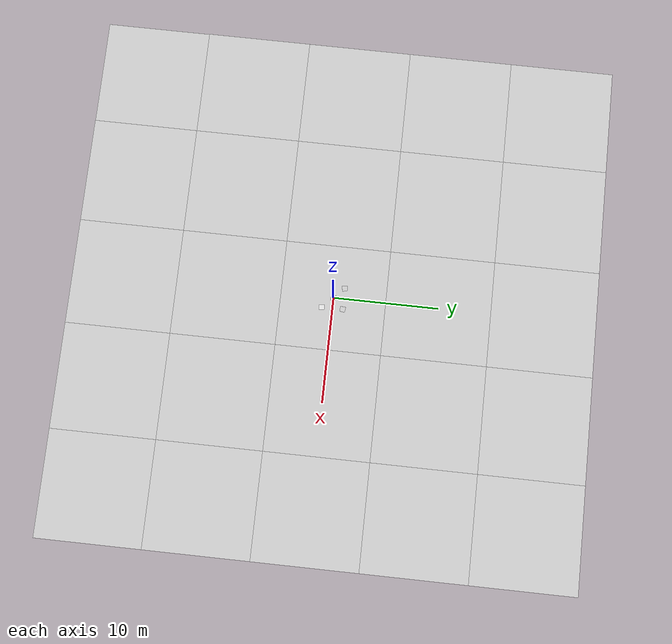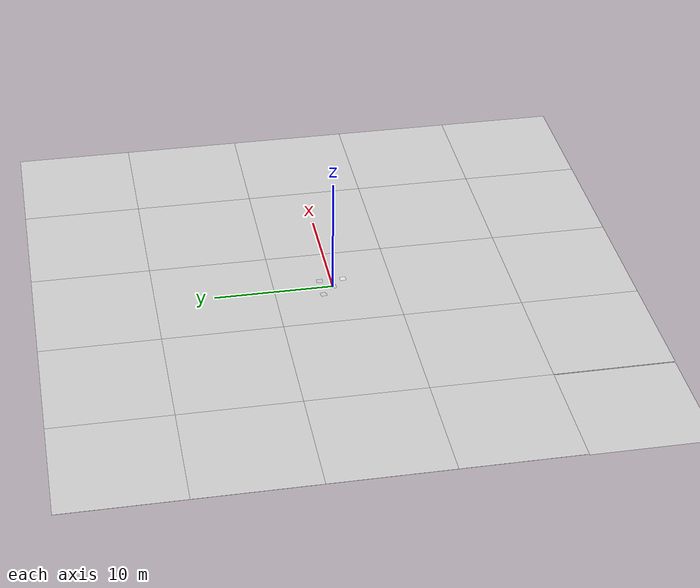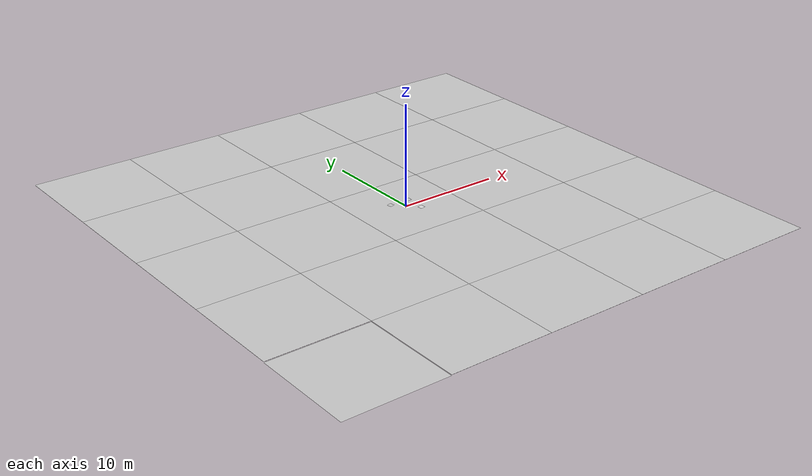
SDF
<?xml version="1.0" ?>
<sdf version="1.4">
  <world name="default">
    <plugin
      filename="gz-sim-physics-system"
      name="gz::sim::systems::Physics"/>
    <plugin
      filename="gz-sim-scene-broadcaster-system"
      name="gz::sim::systems::SceneBroadcaster"/>
    <plugin
      filename="gz-sim-user-commands-system"
      name="gz::sim::systems::UserCommands"/>
    <plugin
      filename="gz-sim-sensors-system"
      name="gz::sim::systems::Sensors">
      <render_engine>ogre2</render_engine>
    </plugin>

    <light name='sun' type='directional'>
      <cast_shadows>0</cast_shadows>
      <intensity> 3 </intensity>
      <pose>0 0 10 0 -0 0</pose>
      <diffuse>0.8 0.8 0.8 1</diffuse>
      <specular>0.2 0.2 0.2 1</specular>
      <attenuation>
        <range>1000</range>
        <constant>0.99</constant>
        <linear>0.02</linear>
        <quadratic>0.001</quadratic>
      </attenuation>
      <direction>-0.5 0.1 -0.9</direction>
      <spot>
        <inner_angle>0</inner_angle>
        <outer_angle>0</outer_angle>
        <falloff>0</falloff>
      </spot>
    </light>

    <spherical_coordinates>
      <surface_model>EARTH_WGS84</surface_model>
      <latitude_deg>47.3667</latitude_deg>
      <longitude_deg>8.5500</longitude_deg>
      <elevation>500.0</elevation>
      <heading_deg>0</heading_deg>
    </spherical_coordinates>
    <physics type='ode'>
      <ode>
        <solver>
          <type>quick</type>
          <iters>1000</iters>
          <sor>1.3</sor>
        </solver>
        <constraints>
          <cfm>0</cfm>
          <erp>0.2</erp>
          <contact_max_correcting_vel>100</contact_max_correcting_vel>
          <contact_surface_layer>0.001</contact_surface_layer>
        </constraints>
      </ode>
      <max_step_size>0.01</max_step_size>
      <real_time_factor>1</real_time_factor>
      <real_time_update_rate>100</real_time_update_rate>
      <gravity>0 0 -9.8</gravity>
    </physics>

  <include>
    <name>ground_00</name>
    <uri>model://mygroundplane</uri>
    <pose> -20 -20 0.03 0 0 0</pose>
  </include>

  <include>
    <name>ground_01</name>
    <uri>model://mygroundplane</uri>
    <pose> -10 -20 0.03 0 0 0</pose>
  </include>

  <include>
    <name>ground_02</name>
    <uri>model://mygroundplane</uri>
    <pose> 0 -20 0.03 0 0 0</pose>
  </include>

  <include>
    <name>ground_03</name>
    <uri>model://mygroundplane</uri>
    <pose> 10 -20 0.03 0 0 0</pose>
  </include>

  <include>
    <name>ground_04</name>
    <uri>model://mygroundplane</uri>
    <pose> 20 -20 0.03 0 0 0</pose>
  </include>

  <include>
    <name>ground_10</name>
    <uri>model://mygroundplane</uri>
    <pose> -20 -10 0.03 0 0 0</pose>
  </include>

  <include>
    <name>ground_11</name>
    <uri>model://mygroundplane</uri>
    <pose> -10 -10 0.03 0 0 0</pose>
  </include>

  <include>
    <name>ground_12</name>
    <uri>model://mygroundplane</uri>
    <pose> 0 -10 0.03 0 0 0</pose>
  </include>

  <include>
    <name>ground_13</name>
    <uri>model://mygroundplane</uri>
    <pose> 10 -10 0.03 0 0 0</pose>
  </include>

  <include>
    <name>ground_14</name>
    <uri>model://mygroundplane</uri>
    <pose> 20 -10 0.03 0 0 0</pose>
  </include>

  <include>
    <name>ground_20</name>
    <uri>model://mygroundplane</uri>
    <pose> -20 0 0.03 0 0 0</pose>
  </include>

  <include>
    <name>ground_21</name>
    <uri>model://mygroundplane</uri>
    <pose> -10 0 0.03 0 0 0</pose>
  </include>

  <include>
    <name>ground_22</name>
    <uri>model://mygroundplane</uri>
    <pose> 0 0 0.03 0 0 0</pose>
  </include>

  <include>
    <name>ground_23</name>
    <uri>model://mygroundplane</uri>
    <pose> 10 0 0.03 0 0 0</pose>
  </include>

  <include>
    <name>ground_24</name>
    <uri>model://mygroundplane</uri>
    <pose> 20 0 0.03 0 0 0</pose>
  </include>

  <include>
    <name>ground_30</name>
    <uri>model://mygroundplane</uri>
    <pose> -20 10 0.03 0 0 0</pose>
  </include>

  <include>
    <name>ground_31</name>
    <uri>model://mygroundplane</uri>
    <pose> -10 10 0.03 0 0 0</pose>
  </include>

  <include>
    <name>ground_32</name>
    <uri>model://mygroundplane</uri>
    <pose> 0 10 0.03 0 0 0</pose>
  </include>

  <include>
    <name>ground_33</name>
    <uri>model://mygroundplane</uri>
    <pose> 10 10 0.03 0 0 0</pose>
  </include>

  <include>
    <name>ground_34</name>
    <uri>model://mygroundplane</uri>
    <pose> 20 10 0.03 0 0 0</pose>
  </include>

  <include>
    <name>ground_40</name>
    <uri>model://mygroundplane</uri>
    <pose> -20 20 0.03 0 0 0</pose>
  </include>

  <include>
    <name>ground_41</name>
    <uri>model://mygroundplane</uri>
    <pose> -10 20 0.03 0 0 0</pose>
  </include>

  <include>
    <name>ground_42</name>
    <uri>model://mygroundplane</uri>
    <pose> 0 20 0.03 0 0 0</pose>
  </include>

  <include>
    <name>ground_43</name>
    <uri>model://mygroundplane</uri>
    <pose> 10 20 0.03 0 0 0</pose>
  </include>

  <include>
    <name>ground_44</name>
    <uri>model://mygroundplane</uri>
    <pose> 20 20 0.03 0 0 0</pose>
  </include>

  <model name="ArUco_1">
    <static>true</static>
    <pose> 0 0 0.04 0 0 0 </pose>
    <link name="link">
      <collision name="collision">
        <geometry>
          <plane>
            <normal>0 0 1</normal>
            <size>0.5 0.5</size>
          </plane>
        </geometry>
        <surface>
          <friction>
            <ode>
              <mu>100</mu>
              <mu2>50</mu2>
            </ode>
          </friction>
        </surface>
      </collision>
      <visual name="visual">
        <cast_shadows>false</cast_shadows>
        <geometry>
          <plane>
            <normal>0 0 1</normal>
            <size>0.5 0.5</size>
          </plane>
        </geometry>
        <material>
          <ambient>0.8 0.8 0.8 1</ambient>
          <diffuse>0.8 0.8 0.8 1</diffuse>
          <specular>0.5 0.5 0.5 1</specular>
          <pbr>
          <metal>
            <albedo_map>model://ArUco/4X4_1000-96.png</albedo_map>
          </metal>
        </pbr>
        </material>
      </visual>
    </link>
  </model>

  <model name="ArUco_2">
    <static>true</static>
    <pose> 1 1 0.04 0 0 -0.1</pose>
    <link name="link">
      <collision name="collision">
        <geometry>
          <plane>
            <normal>0 0 1</normal>
            <size>0.5 0.5</size>
          </plane>
        </geometry>
        <surface>
          <friction>
            <ode>
              <mu>100</mu>
              <mu2>50</mu2>
            </ode>
          </friction>
        </surface>
      </collision>
      <visual name="visual">
        <cast_shadows>false</cast_shadows>
        <geometry>
          <plane>
            <normal>0 0 1</normal>
            <size>0.5 0.5</size>
          </plane>
        </geometry>
        <material>
          <ambient>0.8 0.8 0.8 1</ambient>
          <diffuse>0.8 0.8 0.8 1</diffuse>
          <specular>0.5 0.5 0.5 1</specular>
          <pbr>
          <metal>
            <albedo_map>model://ArUco/4X4_1000-97.png</albedo_map>
          </metal>
        </pbr>
        </material>
      </visual>
    </link>
  </model>

  <model name="ArUco_3">
    <static>true</static>
    <pose> 1 -1 0.04 0 0 0.1 </pose>
    <link name="link">
      <collision name="collision">
        <geometry>
          <plane>
            <normal>0 0 1</normal>
            <size>0.5 0.5</size>
          </plane>
        </geometry>
        <surface>
          <friction>
            <ode>
              <mu>100</mu>
              <mu2>50</mu2>
            </ode>
          </friction>
        </surface>
      </collision>
      <visual name="visual">
        <cast_shadows>false</cast_shadows>
        <geometry>
          <plane>
            <normal>0 0 1</normal>
            <size>0.5 0.5</size>
          </plane>
        </geometry>
        <material>
          <ambient>0.9 0.9 0.9 1</ambient>
          <diffuse>0.9 0.9 0.9 1</diffuse>
          <specular>0.5 0.5 0.5 1</specular>
          <pbr>
          <metal>
            <albedo_map>model://ArUco/4X4_1000-98.png</albedo_map>
          </metal>
        </pbr>
        </material>
      </visual>
    </link>
  </model>

  <model name="ArUco_4">
    <static>true</static>
    <pose> -1 1 0.04 0 0 0.2 </pose>
    <link name="link">
      <collision name="collision">
        <geometry>
        <plane>
          <normal>0 0 1</normal>
          <size>0.5 0.5</size>
        </plane>
        </geometry>
        <surface>
          <friction>
            <ode>
              <mu>100</mu>
              <mu2>50</mu2>
            </ode>
          </friction>
        </surface>
      </collision>
      <visual name="visual">
        <cast_shadows>false</cast_shadows>
        <geometry>
          <plane>
            <normal>0 0 1</normal>
            <size>0.5 0.5</size>
          </plane>
        </geometry>
        <material>
          <ambient>0.8 0.8 0.8 1</ambient>
          <diffuse>0.8 0.8 0.8 1</diffuse>
          <specular>0.5 0.5 0.5 1</specular>
          <pbr>
          <metal>
            <albedo_map>model://ArUco/4X4_1000-99.png</albedo_map>
          </metal>
        </pbr>
        </material>
      </visual>
    </link>
  </model>

  </world>
</sdf>

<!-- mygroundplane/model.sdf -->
<sdf version="1.4">
<model name="my_ground_plane">
  <static>true</static>
    <link name="link">
      <collision name="collision">
        <geometry>
          <plane>
            <normal>0 0 1</normal>
            <size>10 10</size>
          </plane>
        </geometry>
        <surface>
          <friction>
            <ode>
              <mu>100</mu>
              <mu2>50</mu2>
            </ode>
          </friction>
        </surface>
      </collision>
      <visual name="visual">
        <cast_shadows>false</cast_shadows>
        <geometry>
          <plane>
            <normal>0 0 1</normal>
            <size>10 10</size>
          </plane>
        </geometry>
        <material>
          <ambient>0.8 0.8 0.8 1</ambient>
          <diffuse>0.8 0.8 0.8 1</diffuse>
          <specular>0.5 0.5 0.5 1</specular>
          <pbr>
            <metal>
              <albedo_map>aereal_ground.png</albedo_map>
            </metal>
          </pbr>

        </material>
      </visual>
    </link>
  </model>
</sdf>
